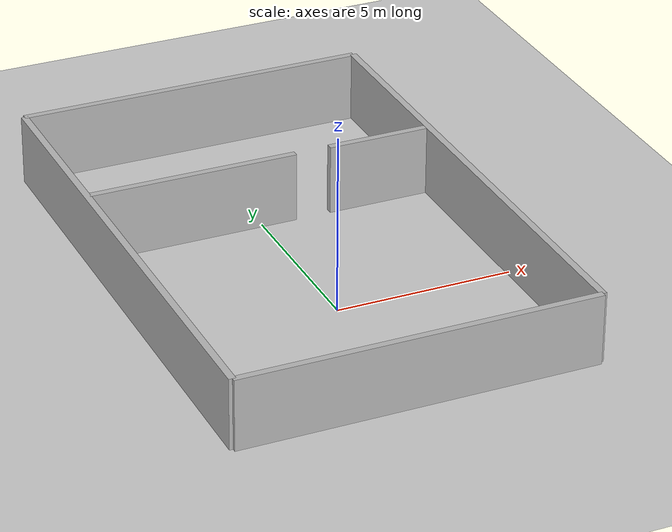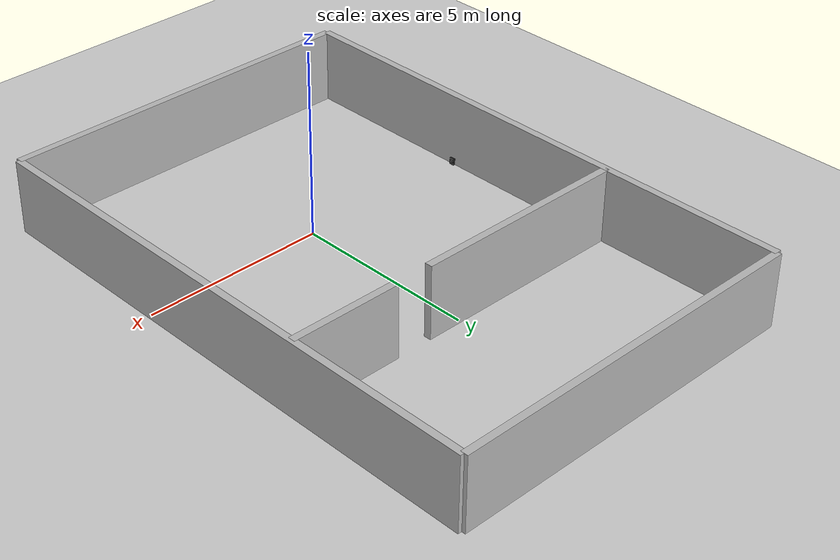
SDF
<?xml version="1.0" ?>
<sdf version="1.4">
  <world name="default">
    <physics type="ode">
      <gravity>0 0 -9.81</gravity>
      <ode>
        <solver>
          <type>quick</type>
          <iters>20</iters>
          <sor>1.0</sor>
        </solver>
        <constraints>
          <cfm>0.0</cfm>
          <erp>0.2</erp>
          <contact_max_correcting_vel>100.0</contact_max_correcting_vel>
          <contact_surface_layer>0.0</contact_surface_layer>
        </constraints>
      </ode>
      <real_time_update_rate>1000</real_time_update_rate>
      <max_step_size>0.001</max_step_size>
    </physics>

    <!-- A global light source -->
    <include>
      <uri>model://sun</uri>
    </include>

    <!-- A ground plane -->
    <include>
      <uri>model://ground_plane</uri>
    </include>

    <model name="wall_1_model">
      <pose>0 -5 1 0 0 0</pose>
      <static>true</static>
      <link name="wall_1_body">
        <inertial>
          <mass>1.0</mass>
          <inertia>
            <ixx>1.0</ixx>
            <ixy>0.0</ixy>
            <ixz>0.0</ixz>
            <iyy>1.0</iyy>
            <iyz>0.0</iyz>
            <izz>1.0</izz>
          </inertia>
        </inertial>
        <collision name="collision">
          <geometry>
            <box>
              <size>10 0.2 2</size>
            </box>
          </geometry>
        </collision>
        <visual name="visual">
          <geometry>
            <box>
              <size>10 0.2 2</size>
            </box>
          </geometry>
        </visual>
      </link>
    </model>
    <model name="wall_2_model">
      <pose>0 10 1 0 0 0</pose>
      <static>true</static>
      <link name="wall_2_body">
        <inertial>
          <mass>1.0</mass>
          <inertia>
            <ixx>1.0</ixx>
            <ixy>0.0</ixy>
            <ixz>0.0</ixz>
            <iyy>1.0</iyy>
            <iyz>0.0</iyz>
            <izz>1.0</izz>
          </inertia>
        </inertial>
        <collision name="collision">
          <geometry>
            <box>
              <size>10 0.2 2</size>
            </box>
          </geometry>
        </collision>
        <visual name="visual">
          <geometry>
            <box>
              <size>10 0.2 2</size>
            </box>
          </geometry>
        </visual>
      </link>
    </model>
    <model name="wall_3_model">
      <pose>-5 2.5 1 0 0 0</pose>
      <static>true</static>
      <link name="wall_3_body">
        <inertial>
          <mass>1.0</mass>
          <inertia>
            <ixx>1.0</ixx>
            <ixy>0.0</ixy>
            <ixz>0.0</ixz>
            <iyy>1.0</iyy>
            <iyz>0.0</iyz>
            <izz>1.0</izz>
          </inertia>
        </inertial>
        <collision name="collision">
          <geometry>
            <box>
              <size>0.2 15 2</size>
            </box>
          </geometry>
        </collision>
        <visual name="visual">
          <geometry>
            <box>
              <size>0.2 15 2</size>
            </box>
          </geometry>
        </visual>
      </link>
    </model>
    <model name="wall_4_model">
      <pose>5 2.5 1 0 0 0</pose>
      <static>true</static>
      <link name="wall_4_body">
        <inertial>
          <mass>1.0</mass>
          <inertia>
            <ixx>1.0</ixx>
            <ixy>0.0</ixy>
            <ixz>0.0</ixz>
            <iyy>1.0</iyy>
            <iyz>0.0</iyz>
            <izz>1.0</izz>
          </inertia>
        </inertial>
        <collision name="collision">
          <geometry>
            <box>
              <size>0.2 15 2</size>
            </box>
          </geometry>
        </collision>
        <visual name="visual">
          <geometry>
            <box>
              <size>0.2 15 2</size>
            </box>
          </geometry>
        </visual>
      </link>
    </model>
    <model name="wall_5_model">
      <pose>-2 5 1 0 0 0</pose>
      <static>true</static>
      <link name="wall_5_body">
        <inertial>
          <mass>1.0</mass>
          <inertia>
            <ixx>1.0</ixx>
            <ixy>0.0</ixy>
            <ixz>0.0</ixz>
            <iyy>1.0</iyy>
            <iyz>0.0</iyz>
            <izz>1.0</izz>
          </inertia>
        </inertial>
        <collision name="collision">
          <geometry>
            <box>
              <size>6 0.2 2</size>
            </box>
          </geometry>
        </collision>
        <visual name="visual">
          <geometry>
            <box>
              <size>6 0.2 2</size>
            </box>
          </geometry>
        </visual>
      </link>
    </model>
    <model name="wall_6_model">
      <pose>3.5 5 1 0 0 0</pose>
      <static>true</static>
      <link name="wall_6_body">
        <inertial>
          <mass>1.0</mass>
          <inertia>
            <ixx>1.0</ixx>
            <ixy>0.0</ixy>
            <ixz>0.0</ixz>
            <iyy>1.0</iyy>
            <iyz>0.0</iyz>
            <izz>1.0</izz>
          </inertia>
        </inertial>
        <collision name="collision">
          <geometry>
            <box>
              <size>3 0.2 2</size>
            </box>
          </geometry>
        </collision>
        <visual name="visual">
          <geometry>
            <box>
              <size>3 0.2 2</size>
            </box>
          </geometry>
        </visual>
      </link>
    </model>
    <model name='dock'>
      <static>1</static>
      <link name='link'>
        <collision name='colision1'>
          <pose>0 0 0 0 -0 0</pose>
          <geometry>
            <mesh>
              <uri>model://dock/meshes/dock.stl</uri>
              <scale>1 1 1</scale>
            </mesh>
          </geometry>
          <surface>
            <bounce/>
            <friction>
              <ode/>
            </friction>
            <contact>
              <ode/>
            </contact>
          </surface>
          <max_contacts>10</max_contacts>
        </collision>
        <visual name='visual1'>
          <pose>0 0 0 0 0 0</pose>
          <geometry>
            <mesh>
              <uri>model://dock/meshes/dock.stl</uri>
              <scale>1 1 1</scale>
            </mesh>
          </geometry>
          <material>
            <script>
              <uri>file://media/materials/scripts/gazebo.material</uri>
              <name>Gazebo/FlatBlack</name>
            </script>
          </material>
        </visual>
        <velocity_decay>
          <linear>0</linear>
          <angular>0</angular>
        </velocity_decay>
        <self_collide>0</self_collide>
        <kinematic>0</kinematic>
        <gravity>1</gravity>
      </link>
      <pose>-4.9 0 0 0 0 0</pose>
    </model>
  </world>
</sdf>
